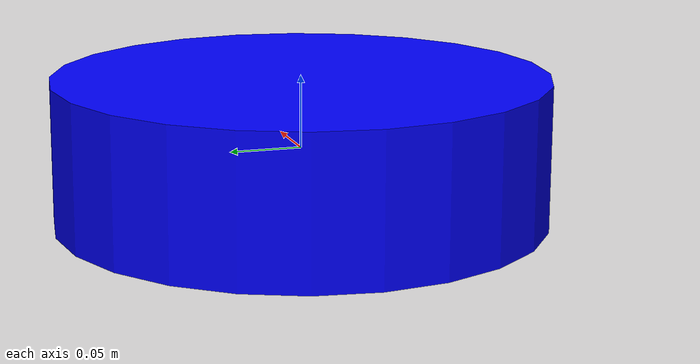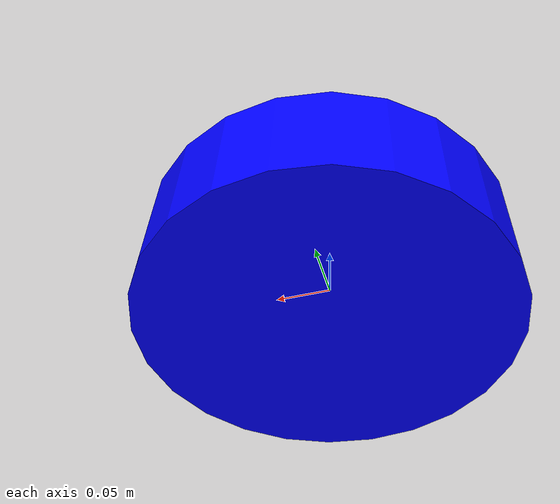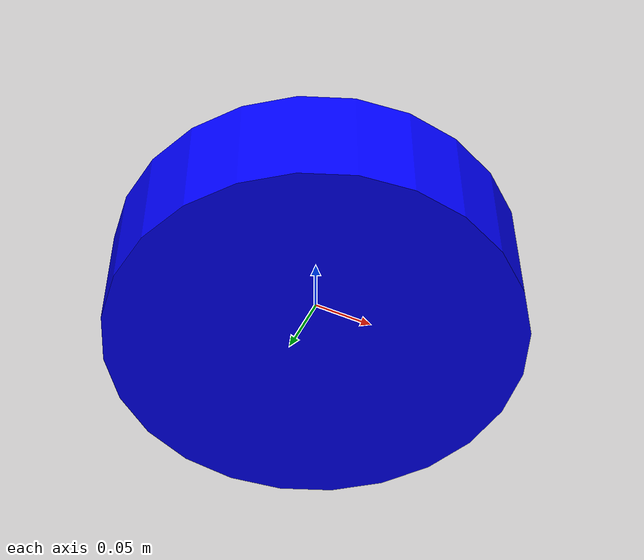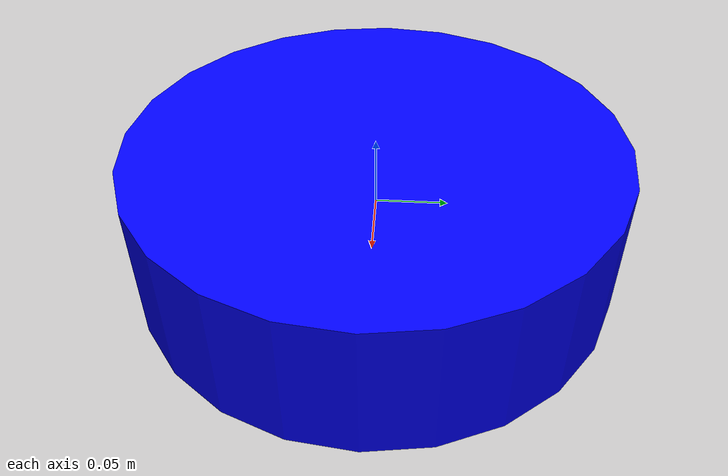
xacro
<!-- File: urdf/turtlebot.urdf.xacro -->
<?xml version="1.0"?>
<robot name="turtlebot" xmlns:xacro="http://www.ros.org/wiki/xacro">
  <!-- Basic TurtleBot base -->
  <link name="base_link">
    <visual>
      <geometry>
        <cylinder radius="0.17" length="0.1"/>
      </geometry>
      <material name="blue">
        <color rgba="0 0 1 1"/>
      </material>
    </visual>
  </link>

  <!-- Add more links, wheels, sensors as needed -->
</robot>
